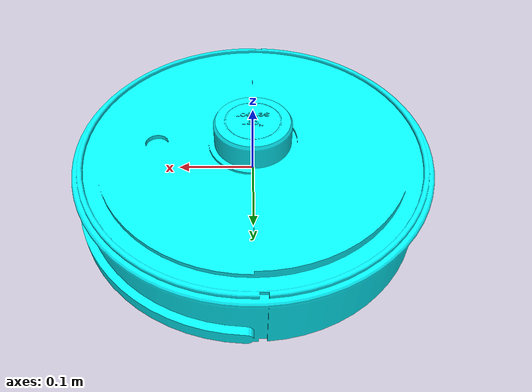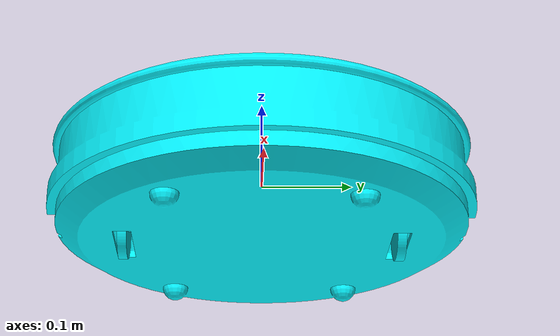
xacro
<?xml version="1.0" ?>
<robot name="thats_final" xmlns:xacro="http://www.ros.org/wiki/xacro">

<xacro:include filename="materials.xacro" />
<xacro:include filename="thats_final.trans" />
<xacro:include filename="thats_final.gazebo" />
<!-- all this files should be in one folder except for meshes-->
<!-- and the package name mentioned throught out is not related to this package it should be changed -->
<!-- by user depending on which package is to be runned-->
<!-- also the urdf files should be inside the package folder and no where else-->
<!-- and the meshes should be in .dae format-->
<link name="base_link">
  <inertial>
    <origin xyz="-0.0021320863341562817 1.304027598047179e-06 0.0019093447110187167" rpy="0 0 0"/>
    <mass value="4.702435697138719"/>
    <inertia ixx="0.078618" iyy="0.077922" izz="0.137432" ixy="-1e-06" iyz="0.0" ixz="0.002044"/>
  </inertial>
  <visual>
    <origin xyz="0 0 0" rpy="0 0 0"/>
    <geometry>
      <mesh filename="package://package_name/meshes/base_link.dae" scale="0.001 0.001 0.001"/>
    </geometry>
    <material name="silver"/>
  </visual>
  <collision>
    <origin xyz="0 0 0" rpy="0 0 0"/>
    <geometry>
      <mesh filename="package://package_name/meshes/base_link.dae" scale="0.001 0.001 0.001"/>
    </geometry>
  </collision>
</link>

<link name="left_wheel_1">
  <inertial>
    <origin xyz="-1.0556557268404314e-14 0.005924242424242415 0.0" rpy="0 0 0"/>
    <mass value="0.04859651136021707"/>
    <inertia ixx="1.5e-05" iyy="2.9e-05" izz="1.5e-05" ixy="0.0" iyz="0.0" ixz="0.0"/>
  </inertial>
  <visual>
    <origin xyz="-0.0 -0.145 0.05" rpy="0 0 0"/>
    <geometry>
      <mesh filename="package://package_name/meshes/left_wheel_1.dae" scale="0.001 0.001 0.001"/>
    </geometry>
    <material name="silver"/>
  </visual>
  <collision>
    <origin xyz="-0.0 -0.145 0.05" rpy="0 0 0"/>
    <geometry>
      <mesh filename="package://package_name/meshes/left_wheel_1.dae" scale="0.001 0.001 0.001"/>
    </geometry>
  </collision>
</link>

<link name="right_wheel_1">
  <inertial>
    <origin xyz="-1.0556557268404314e-14 -0.005924242424242415 0.0" rpy="0 0 0"/>
    <mass value="0.04859651136021707"/>
    <inertia ixx="1.5e-05" iyy="2.9e-05" izz="1.5e-05" ixy="-0.0" iyz="0.0" ixz="-0.0"/>
  </inertial>
  <visual>
    <origin xyz="-0.0 0.145 0.05" rpy="0 0 0"/>
    <geometry>
      <mesh filename="package://package_name/meshes/right_wheel_1.dae" scale="0.001 0.001 0.001"/>
    </geometry>
    <material name="silver"/>
  </visual>
  <collision>
    <origin xyz="-0.0 0.145 0.05" rpy="0 0 0"/>
    <geometry>
      <mesh filename="package://package_name/meshes/right_wheel_1.dae" scale="0.001 0.001 0.001"/>
    </geometry>
  </collision>
</link>

<link name="lidar_1">
  <inertial>
    <origin xyz="-0.0001674397126749131 0.00043761741327196337 0.024651949407387436" rpy="0 0 0"/>
    <mass value="0.04975155245888164"/>
    <inertia ixx="4.7e-05" iyy="4.8e-05" izz="8.4e-05" ixy="-0.0" iyz="0.0" ixz="-0.0"/>
  </inertial>
  <visual>
    <origin xyz="-0.0 -0.0 -0.049" rpy="0 0 0"/>
    <geometry>
      <mesh filename="package://package_name/meshes/lidar_1.dae" scale="0.001 0.001 0.001"/>
    </geometry>
    <material name="silver"/>
  </visual>
  <collision>
    <origin xyz="-0.0 -0.0 -0.049" rpy="0 0 0"/>
    <geometry>
      <mesh filename="package://package_name/meshes/lidar_1.dae" scale="0.001 0.001 0.001"/>
    </geometry>
  </collision>
</link>

<joint name="left_wheel_joint" type="continuous">
  <origin xyz="0.0 0.145 -0.05" rpy="0 0 0"/>
  <parent link="base_link"/>
  <child link="left_wheel_1"/>
  <axis xyz="0.0 1.0 0.0"/>
</joint>

<joint name="right_wheel_joint" type="continuous">
  <origin xyz="0.0 -0.145 -0.05" rpy="0 0 0"/>
  <parent link="base_link"/>
  <child link="right_wheel_1"/>
  <axis xyz="0.0 -1.0 0.0"/>
</joint>

<joint name="lidar" type="continuous">
  <origin xyz="0.0 0.0 0.049" rpy="0 0 0"/>
  <parent link="base_link"/>
  <child link="lidar_1"/>
  <axis xyz="0.0 0.0 1.0"/>
</joint>

</robot>

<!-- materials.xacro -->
<robot name="thats_final" xmlns:xacro="http://www.ros.org/wiki/xacro" >

<material name="silver">
  <color rgba="6, 244, 255, 0.43"/>
</material>

</robot>

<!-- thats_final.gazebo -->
<robot name="thats_final" xmlns:xacro="http://www.ros.org/wiki/xacro" >

<xacro:property name="body_color" value="Gazebo/Silver" />

<gazebo>
  <plugin name="control" filename="libgazebo_ros_control.so"/>
</gazebo>
<gazebo reference="base_link">
  <material>${body_color}</material>
  <mu1>0.2</mu1>
  <mu2>0.2</mu2>
  <selfCollide>true</selfCollide>
  <gravity>true</gravity>
</gazebo>

<gazebo reference="left_wheel_1">
  <material>${body_color}</material>
  <mu1>0.2</mu1>
  <mu2>0.2</mu2>
  <selfCollide>true</selfCollide>
</gazebo>

<gazebo reference="right_wheel_1">
  <material>${body_color}</material>
  <mu1>0.2</mu1>
  <mu2>0.2</mu2>
  <selfCollide>true</selfCollide>
</gazebo>

<gazebo reference="lidar_1">
  <material>${body_color}</material>
  <mu1>0.2</mu1>
  <mu2>0.2</mu2>
  <selfCollide>true</selfCollide>
</gazebo>

</robot>
